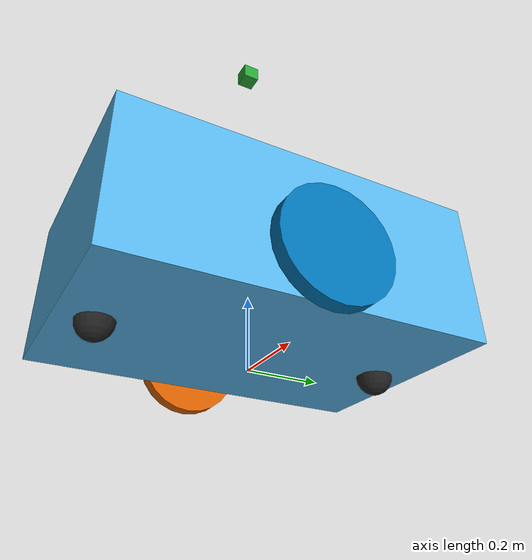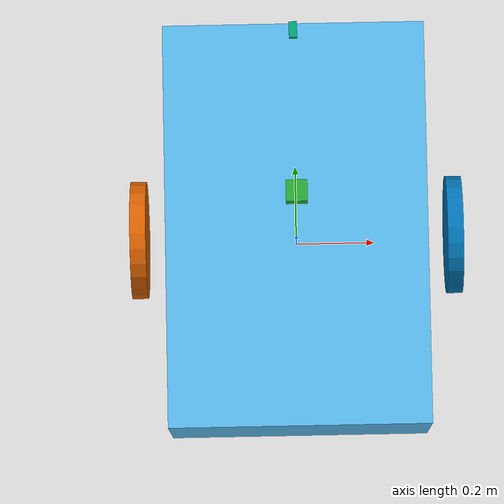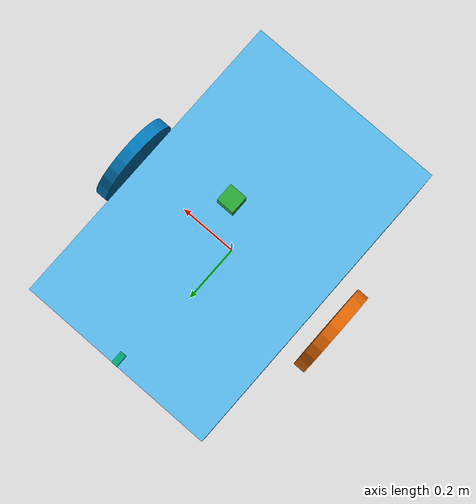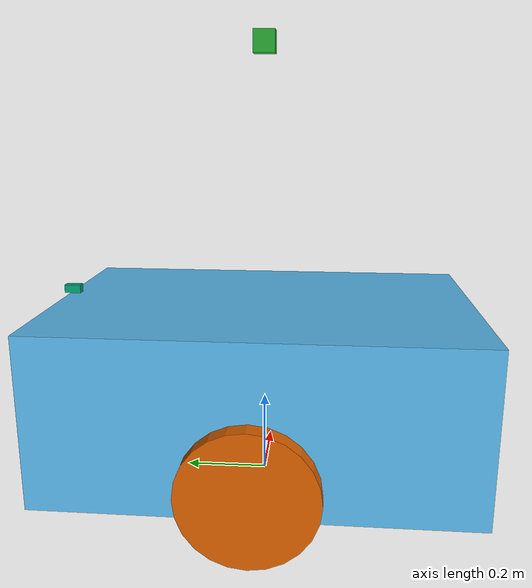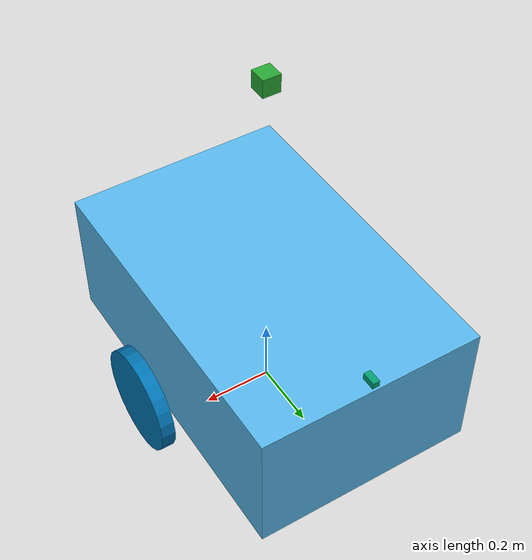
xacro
<?xml version="1.0" ?>
<robot name="SimpleMouse" xmlns:xacro="http://ros.org/wiki/xacro">
 <xacro:include filename="$(find kait_gazebo)/urdf/body.urdf.xacro" />
 <xacro:include filename="$(find kait_gazebo)/urdf/wheel.urdf.xacro" />
 <xacro:include filename="$(find kait_gazebo)/urdf/caster.urdf.xacro" />
 <xacro:include filename="$(find kait_gazebo)/urdf/light_sensor.urdf.xacro" />
 <xacro:include filename="$(find kait_gazebo)/urdf/camera2.urdf.xacro" />
 <xacro:gazebo_light_sensor name="front" parent="body" xyz="0.0 0.48 0.22" direction="0" />
 <xacro:cam sub="0" parent="body" transX="0" transY="0" transZ="0.8" />

 <gazebo>
    <plugin name="differential_drive_controller" filename="libgazebo_ros_diff_drive.so">
      <leftJoint>wheel_l_joint</leftJoint>
      <rightJoint>wheel_r_joint</rightJoint>
      <robotBaseFrame>base_link</robotBaseFrame>
      <wheelSeparation>0.8</wheelSeparation>
      <wheelDiameter>0.15</wheelDiameter>
      <publishWheelJointState>true</publishWheelJointState>
      <legacyMode>false</legacyMode>
      <odometryTopic>odom</odometryTopic>
      <odometryFrame>odom</odometryFrame>
    </plugin>
  </gazebo>
 <xacro:wheel rl="r" parent="body" />
 <xacro:wheel rl="l" parent="body" />
 <xacro:caster sub="f" parent="body" transX="0" transY="0.4" transZ="-0.2" />
 <xacro:caster sub="r" parent="body" transX="0" transY="-0.4" transZ="-0.2" />

</robot>

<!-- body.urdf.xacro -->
<robot name="body" xmlns:xacro="http://ros.org/wiki/xacro">
<link name="base_link" />

<xacro:property name="b_m" value="1.68"/>
<xacro:property name="b_m2" value="${b_m/12}"/>
<xacro:property name="b_w" value="0.65"/>
<xacro:property name="b_h" value="1.0"/>
<xacro:property name="b_d" value="0.4"/>
<link name="body">
   <visual>
　　<geometry>
　　　<box size="${b_w} ${b_h} ${b_d}" />
     </geometry>
  </visual>
   <collision>
　　<geometry>
　　　<box size="${b_w} ${b_h} ${b_d}" />
     </geometry>
  </collision>
  <inertial>
     <origin xyz="0 0 0" rpy="0 0 0" />
     <mass value="${b_m}" />
    <inertia ixx="${b_m2*(b_h*b_h+b_d*b_d)}" ixy="0"    ixz="0"
                 iyx="0"   iyy="${b_m2*(b_w*b_w+b_d*b_d)}"  iyz="0"
		 izx="0"   izy="0"  izz="${b_m2*(b_w*b_w+b_h*b_h)}" />
  </inertial>
</link>
<joint name="body_joint" type="fixed">
<parent link="base_link" />
   <child link="body" />
   <origin xyz="0 0 0.25" rpy="0 0 0" />
</joint>
</robot>

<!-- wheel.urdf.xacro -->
<robot name="wheel" xmlns:xacro="http://ros.org/wiki/xacro" >

<xacro:property name="PI" value="3.1415926535897931"/>
<xacro:property name="wheel_radius" value="0.15"/>
<xacro:property name="wheel_height" value="0.04"/>
<xacro:property name="wheel_mass" value="1.12"/>

<xacro:macro name="wheel" params="rl parent">
<link name="wheel_${rl}">
<visual>
  <geometry>
     <cylinder length="${wheel_height}" radius="${wheel_radius}" />
  </geometry>
</visual>
   <collision>
　　<geometry>
　　　<cylinder radius="${wheel_radius}" length="${wheel_height}" />
     </geometry>
  </collision>
  <inertial>
     <origin xyz="0 0 0" rpy="0 0 0" />
     <mass value="${wheel_mass}" />
    <inertia ixx="${wheel_mass*(3*wheel_radius*wheel_radius+wheel_height*wheel_height)/12}"
        ixy="0"  ixz="0"
        iyx="0"  iyy="${wheel_mass*(3*wheel_radius*wheel_radius+wheel_height*wheel_height)/12}"
         iyz="0"
         izx="0"  izy="0"  izz="${wheel_mass*(wheel_radius*wheel_radius)/2}" />
  </inertial>
</link>
<joint name="wheel_${rl}_joint" type="continuous">
  <parent link="${parent}" />
  <child link="wheel_${rl}" />
  <xacro:if value="${rl == 'r'}">
    <origin xyz="0.4 0 -0.1" rpy="0 ${PI/2} 0" />
  </xacro:if>
  <xacro:if value="${rl == 'l'}">
    <origin xyz="-0.4 0 -0.1" rpy="0 ${PI/2} 0" />
  </xacro:if>
  <axis xyz="0 0 -1" />
  <limit effort="10" velocity="10" />
  <joint_properties damping="0.0" friction="0.0" />
</joint>
</xacro:macro>
</robot>

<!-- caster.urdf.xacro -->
<robot name="caster" xmlns:xacro="http://www.ros.org/wiki/xacro">

  <!-- Casters -->
  <xacro:macro name="sphere_inertia" params="m r">
    <inertia ixx="${m*r*r/5}" ixy="0" ixz="0"
             iyy="${m*r*r/5}" iyz="0"
             izz="${m*r*r/5}" />
  </xacro:macro>

  <xacro:property name="caster_radius" value="0.050" /> <!-- in m -->
  <xacro:property name="caster_mass"   value="0.100" /> <!-- in kg-->

  <xacro:macro name="caster" params="sub parent transX transY transZ">
    <!-- sub: l,r 0,1,2,3 etc -->
    <!-- parent: parent link name -->
    <!-- transX transY transZ: xyz position -->

    <link name="caster_${sub}">
      <visual>
        <origin xyz="0 0 0" rpy="0 0 0" />
        <geometry>
          <sphere radius="${caster_radius}" />
        </geometry>
        <material name="Black" />
      </visual>
      <collision>
        <origin xyz="0 0 0" rpy="0 0 0" />
        <geometry>
          <sphere radius="${caster_radius}" />
        </geometry>
      </collision>
      <inertial>
        <mass value="${caster_mass}" />
        <origin xyz="0 0 0" />
        <xacro:sphere_inertia m="${caster_mass}" r="${caster_radius}" />
      </inertial>
    </link>

    <gazebo reference="caster_${sub}">
      <turnGravityOff>false</turnGravityOff>
      <mu1 value="0.0"/>
      <mu2 value="0.0"/>
    </gazebo>

    <joint name="caster_${sub}_joint" type="fixed">
      <parent link="${parent}"/>
      <child link="caster_${sub}"/>
      <origin xyz="${transX} ${transY} ${transZ}" rpy="0 0 0" />
    </joint>

  </xacro:macro>
</robot>

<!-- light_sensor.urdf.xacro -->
<robot name="light_sensor"
            xmlns:xacro="http://ros.org/wiki/xacro">
  <xacro:property name="light_range" value="4.19"/>
  <xacro:property name="min_range" value="0.01"/>
  <xacro:property name="max_range" value="4.0"/>
  <xacro:property name="PI" value="3.14159265358979"/>
  <xacro:macro name="gazebo_light_sensor"
                params="name parent xyz direction">
    <link name="${name}_sensor">
      <visual>
        <geometry>
          <box size="0.04 0.02 0.02"/>
        </geometry>
      </visual>
      <inertial>
        <mass value="0.0001"/>
        <inertia ixx="0.0001" ixy="0" ixz="0"
                  iyx="0" iyy="0.0001" iyz="0"
                  izx="0" izy="0" izz="0.0001"/>
      </inertial>
    </link>
    <joint name="${name}_sensor_joint" type="fixed">
      <parent link="${parent}"/>
      <child link="${name}_sensor"/>
      <origin xyz="${xyz}" rpy="0 0 ${PI/2+direction}"/>
      </joint>
    <gazebo reference="${name}_sensor">
      <sensor type="ray" name="${name}_light_sensor">
         <pose>0 0 0 0 0 0</pose>
         <visualize>true</visualize>
         <update_rate>20</update_rate>
         <ray>
           <scan>
             <horizontal>
               <samples>240</samples>
               <resolution>1</resolution>
               <min_angle>-${light_range/2}</min_angle>
               <max_angle>${light_range/2}</max_angle>
             </horizontal>
           </scan>
           <range>
             <min>${min_range}</min>
             <max>${max_range}</max>
             <resolution>0.001</resolution>
           </range>
           <noise>
             <type>gaussian</type>
             <mean>0.0</mean>
             <stddev>0.005</stddev>
           </noise>
         </ray>
         <plugin
         name="gazebo_${name}_light_sensor_controlller"
                    filename="libgazebo_ros_laser.so">
         <topicName>/light_sensor/${name}/scan</topicName>
         <frameName>${name}_sensor</frameName>
         </plugin>
      </sensor>
    </gazebo>
  </xacro:macro>
</robot>

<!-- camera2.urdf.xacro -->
<robot name="cam" xmlns:xacro="http://www.ros.org/wiki/xacro">

  <!-- Lidar sensors -->
  <xacro:property name="cam_size" value="0.050" /> <!-- in m -->
  <xacro:property name="cam_mass" value="0.160" /> <!-- in kg-->

  <xacro:macro name="cam" params="sub parent transX transY transZ">
    <!-- sub: l,r 0,1,2,3 etc -->
    <!-- parent: parent link name -->
    <!-- transX transY transZ: xyz position -->

    <link name="cam_${sub}">
      <visual>
        <origin xyz="0 0 0" rpy="0 0 0" />
        <geometry>
          <box size="${cam_size} ${cam_size} ${cam_size}" />
        </geometry>
        <material name="Green" />
      </visual>
    </link>

    <joint name="cam_${sub}_joint" type="fixed">
      <origin xyz="${transX} ${transY} ${transZ}" rpy="0 0 0" />
      <parent link="${parent}"/>
      <child link="cam_${sub}"/>
    </joint>

    <gazebo reference="cam_${sub}">
      <material>Gazebo/Green</material>
      <visualize>true</visualize>
      <turnGravityOff>false</turnGravityOff>

      <sensor type="camera" name="cam_${sub}">
        <update_rate>10.0</update_rate>
        <camera name="cam_${sub}">
          <pose>${transX} ${transY} ${transZ} 0 0.3  1.57</pose>
          <horizontal_fov>1.3962634</horizontal_fov>
          <image>
            <width>800</width>
            <height>600</height>
            <format>R8G8B8</format>
          </image>
          <clip>
            <near>0.02</near>
            <far>300</far>
          </clip>
          <noise>
            <type>gaussian</type>
            <mean>0.0</mean>
            <stddev>0.007</stddev>
          </noise>
        </camera>

        <plugin name="camera_controller" filename="libgazebo_ros_camera.so">
          <alwaysOn>true</alwaysOn>
          <updateRate>0.0</updateRate>
          <cameraName>cam_${sub}</cameraName>
          <imageTopicName>image_raw</imageTopicName>
          <cameraInfoTopicName>camera_info</cameraInfoTopicName>
          <frameName>cam_${sub}</frameName>
          <hackBaseline>0.0</hackBaseline>
          <distortionK1>0.0</distortionK1>
          <distortionK2>0.0</distortionK2>
          <distortionK3>0.0</distortionK3>
          <distortionT1>0.0</distortionT1>
          <distortionT2>0.0</distortionT2>
        </plugin>
      </sensor>

    </gazebo>

  </xacro:macro>
</robot>
